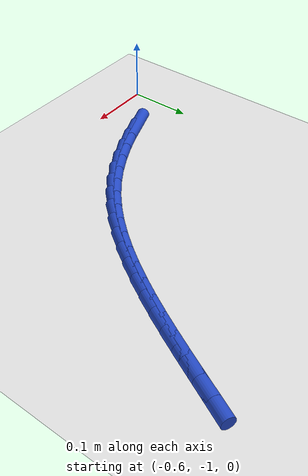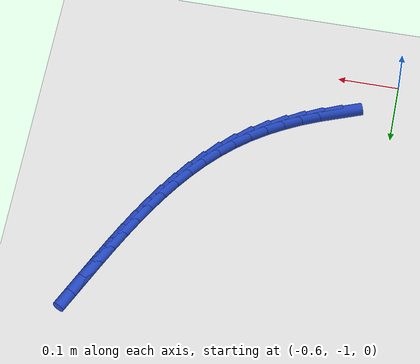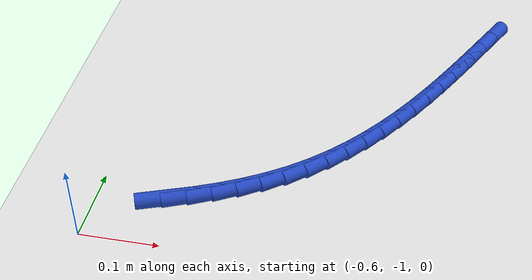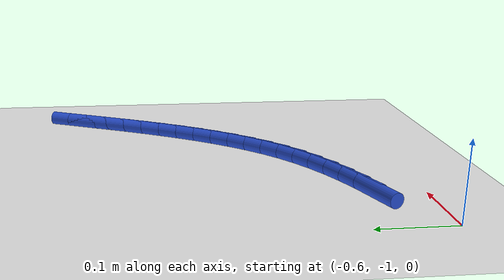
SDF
<sdf version="1.6">
 <world name="default">
  <model name="ground_plane">
   <static>1</static>
   <link name="link">
    <collision name="collision">
     <geometry><plane><normal>0 0 1</normal><size>100 100</size></plane></geometry>
     <surface><friction><ode><mu>100</mu><mu2>50</mu2></ode></friction></surface>
    </collision>
    <visual name="visual">
     <cast_shadows>0</cast_shadows>
     <geometry><plane><normal>0 0 1</normal><size>100 100</size></plane></geometry>
     <material>
      <script><uri>file://media/materials/scripts/gazebo.material</uri><name>Gazebo/WhiteGlow</name></script>
     </material>
    </visual>
   </link>
  </model>
  <model name="line">
   <link name="link_193">
    <pose>-0.5097102772443849 -0.9305925080376912 0.01 0 1.57 0.3600000068946389</pose>
    <collision name="collision">
     <geometry><cylinder><radius>0.01</radius><length>0.08</length></cylinder></geometry>
    </collision>
    <visual name="visual">
     <material>
      <script><name>Gazebo/Blue</name><uri>file://media/materials/scripts/gazebo.material</uri></script>
     </material>
     <geometry><cylinder><radius>0.01</radius><length>0.08</length></cylinder></geometry>
    </visual>
   </link>
   <link name="link_194">
    <pose>-0.48117781857553704 -0.9198528090057864 0.01 0 1.57 0.40984225397110774</pose>
    <collision name="collision">
     <geometry><cylinder><radius>0.01</radius><length>0.08</length></cylinder></geometry>
    </collision>
    <visual name="visual">
     <material>
      <script><name>Gazebo/Blue</name><uri>file://media/materials/scripts/gazebo.material</uri></script>
     </material>
     <geometry><cylinder><radius>0.01</radius><length>0.08</length></cylinder></geometry>
    </visual>
   </link>
   <link name="link_195">
    <pose>-0.4533439623577799 -0.9077605662899764 0.01 0 1.57 0.4652003047961257</pose>
    <collision name="collision">
     <geometry><cylinder><radius>0.01</radius><length>0.08</length></cylinder></geometry>
    </collision>
    <visual name="visual">
     <material>
      <script><name>Gazebo/Blue</name><uri>file://media/materials/scripts/gazebo.material</uri></script>
     </material>
     <geometry><cylinder><radius>0.01</radius><length>0.08</length></cylinder></geometry>
    </visual>
   </link>
   <link name="link_196">
    <pose>-0.42640352118007707 -0.8942380171467336 0.01 0 1.57 0.5266348341022881</pose>
    <collision name="collision">
     <geometry><cylinder><radius>0.01</radius><length>0.08</length></cylinder></geometry>
    </collision>
    <visual name="visual">
     <material>
      <script><name>Gazebo/Blue</name><uri>file://media/materials/scripts/gazebo.material</uri></script>
     </material>
     <geometry><cylinder><radius>0.01</radius><length>0.08</length></cylinder></geometry>
    </visual>
   </link>
   <link name="link_197">
    <pose>-0.40055130763139146 -0.8792073988325291 0.01 0 1.57 0.5946511050737667</pose>
    <collision name="collision">
     <geometry><cylinder><radius>0.01</radius><length>0.08</length></cylinder></geometry>
    </collision>
    <visual name="visual">
     <material>
      <script><name>Gazebo/Blue</name><uri>file://media/materials/scripts/gazebo.material</uri></script>
     </material>
     <geometry><cylinder><radius>0.01</radius><length>0.08</length></cylinder></geometry>
    </visual>
   </link>
   <link name="link_198">
    <pose>-0.3759821343006879 -0.8625909486038364 0.01 0 1.57 0.6691097431455576</pose>
    <collision name="collision">
     <geometry><cylinder><radius>0.01</radius><length>0.08</length></cylinder></geometry>
    </collision>
    <visual name="visual">
     <material>
      <script><name>Gazebo/Blue</name><uri>file://media/materials/scripts/gazebo.material</uri></script>
     </material>
     <geometry><cylinder><radius>0.01</radius><length>0.08</length></cylinder></geometry>
    </visual>
   </link>
   <link name="link_199">
    <pose>-0.35287799688293287 -0.844320054545646 0.01 0 1.57 0.7429874860215838</pose>
    <collision name="collision">
     <geometry><cylinder><radius>0.01</radius><length>0.08</length></cylinder></geometry>
    </collision>
    <visual name="visual">
     <material>
      <script><name>Gazebo/Blue</name><uri>file://media/materials/scripts/gazebo.material</uri></script>
     </material>
     <geometry><cylinder><radius>0.01</radius><length>0.08</length></cylinder></geometry>
    </visual>
   </link>
   <link name="link_200">
    <pose>-0.3312470391333617 -0.8244502291438205 0.01 0 1.57 0.8106097530414419</pose>
    <collision name="collision">
     <geometry><cylinder><radius>0.01</radius><length>0.08</length></cylinder></geometry>
    </collision>
    <visual name="visual">
     <material>
      <script><name>Gazebo/Blue</name><uri>file://media/materials/scripts/gazebo.material</uri></script>
     </material>
     <geometry><cylinder><radius>0.01</radius><length>0.08</length></cylinder></geometry>
    </visual>
   </link>
   <link name="link_201">
    <pose>-0.31097218737491306 -0.8031263858928388 0.01 0 1.57 0.8713970682016915</pose>
    <collision name="collision">
     <geometry><cylinder><radius>0.01</radius><length>0.08</length></cylinder></geometry>
    </collision>
    <visual name="visual">
     <material>
      <script><name>Gazebo/Blue</name><uri>file://media/materials/scripts/gazebo.material</uri></script>
     </material>
     <geometry><cylinder><radius>0.01</radius><length>0.08</length></cylinder></geometry>
    </visual>
   </link>
   <link name="link_202">
    <pose>-0.2919336074750144 -0.7804954091589891 0.01 0 1.57 0.9251808833258318</pose>
    <collision name="collision">
     <geometry><cylinder><radius>0.01</radius><length>0.08</length></cylinder></geometry>
    </collision>
    <visual name="visual">
     <material>
      <script><name>Gazebo/Blue</name><uri>file://media/materials/scripts/gazebo.material</uri></script>
     </material>
     <geometry><cylinder><radius>0.01</radius><length>0.08</length></cylinder></geometry>
    </visual>
   </link>
   <link name="link_203">
    <pose>-0.27401146530109144 -0.7567041833085579 0.01 0 1.57 0.9720110056225665</pose>
    <collision name="collision">
     <geometry><cylinder><radius>0.01</radius><length>0.08</length></cylinder></geometry>
    </collision>
    <visual name="visual">
     <material>
      <script><name>Gazebo/Blue</name><uri>file://media/materials/scripts/gazebo.material</uri></script>
     </material>
     <geometry><cylinder><radius>0.01</radius><length>0.08</length></cylinder></geometry>
    </visual>
   </link>
   <link name="link_204">
    <pose>-0.25708592672057035 -0.7318995927078324 0.01 0 1.57 1.0120751748921843</pose>
    <collision name="collision">
     <geometry><cylinder><radius>0.01</radius><length>0.08</length></cylinder></geometry>
    </collision>
    <visual name="visual">
     <material>
      <script><name>Gazebo/Blue</name><uri>file://media/materials/scripts/gazebo.material</uri></script>
     </material>
     <geometry><cylinder><radius>0.01</radius><length>0.08</length></cylinder></geometry>
    </visual>
   </link>
   <link name="link_205">
    <pose>-0.24103715760087757 -0.7062285217231001 0.01 0 1.57 1.0456309421531038</pose>
    <collision name="collision">
     <geometry><cylinder><radius>0.01</radius><length>0.08</length></cylinder></geometry>
    </collision>
    <visual name="visual">
     <material>
      <script><name>Gazebo/Blue</name><uri>file://media/materials/scripts/gazebo.material</uri></script>
     </material>
     <geometry><cylinder><radius>0.01</radius><length>0.08</length></cylinder></geometry>
    </visual>
   </link>
   <link name="link_206">
    <pose>-0.22574532380943904 -0.6798378547206473 0.01 0 1.57 1.0729533099218538</pose>
    <collision name="collision">
     <geometry><cylinder><radius>0.01</radius><length>0.08</length></cylinder></geometry>
    </collision>
    <visual name="visual">
     <material>
      <script><name>Gazebo/Blue</name><uri>file://media/materials/scripts/gazebo.material</uri></script>
     </material>
     <geometry><cylinder><radius>0.01</radius><length>0.08</length></cylinder></geometry>
    </visual>
   </link>
   <link name="link_207">
    <pose>-0.2110905912136817 -0.6528744760667624 0.01 0 1.57 1.0942971602700267</pose>
    <collision name="collision">
     <geometry><cylinder><radius>0.01</radius><length>0.08</length></cylinder></geometry>
    </collision>
    <visual name="visual">
     <material>
      <script><name>Gazebo/Blue</name><uri>file://media/materials/scripts/gazebo.material</uri></script>
     </material>
     <geometry><cylinder><radius>0.01</radius><length>0.08</length></cylinder></geometry>
    </visual>
   </link>
   <link name="link_208">
    <pose>-0.19695312568103154 -0.6254852701277319 0.01 0 1.57 1.1098715490154962</pose>
    <collision name="collision">
     <geometry><cylinder><radius>0.01</radius><length>0.08</length></cylinder></geometry>
    </collision>
    <visual name="visual">
     <material>
      <script><name>Gazebo/Blue</name><uri>file://media/materials/scripts/gazebo.material</uri></script>
     </material>
     <geometry><cylinder><radius>0.01</radius><length>0.08</length></cylinder></geometry>
    </visual>
   </link>
   <link name="link_209">
    <pose>-0.18321309307891478 -0.597817121269843 0.01 0 1.57 1.1198225786528249</pose>
    <collision name="collision">
     <geometry><cylinder><radius>0.01</radius><length>0.08</length></cylinder></geometry>
    </collision>
    <visual name="visual">
     <material>
      <script><name>Gazebo/Blue</name><uri>file://media/materials/scripts/gazebo.material</uri></script>
     </material>
     <geometry><cylinder><radius>0.01</radius><length>0.08</length></cylinder></geometry>
    </visual>
   </link>
   <link name="link_210">
    <pose>-0.16975065927475746 -0.5700169138593821 0.01 0 1.57 1.1242219906036917</pose>
    <collision name="collision">
     <geometry><cylinder><radius>0.01</radius><length>0.08</length></cylinder></geometry>
    </collision>
    <visual name="visual">
     <material>
      <script><name>Gazebo/Blue</name><uri>file://media/materials/scripts/gazebo.material</uri></script>
     </material>
     <geometry><cylinder><radius>0.01</radius><length>0.08</length></cylinder></geometry>
    </visual>
   </link>
   <link name="link_211">
    <pose>-0.15644599013598645 -0.5422315322626378 0.01 0 1.57 1.1230694853107017</pose>
    <collision name="collision">
     <geometry><cylinder><radius>0.01</radius><length>0.08</length></cylinder></geometry>
    </collision>
    <visual name="visual">
     <material>
      <script><name>Gazebo/Blue</name><uri>file://media/materials/scripts/gazebo.material</uri></script>
     </material>
     <geometry><cylinder><radius>0.01</radius><length>0.08</length></cylinder></geometry>
    </visual>
   </link>
  </model>
 </world>
</sdf>
